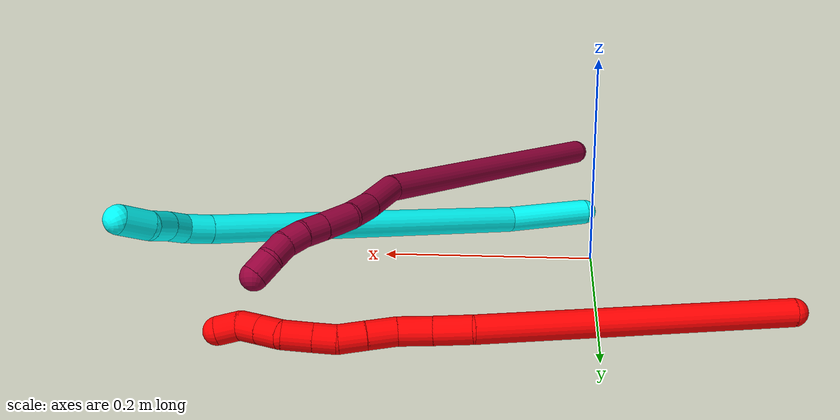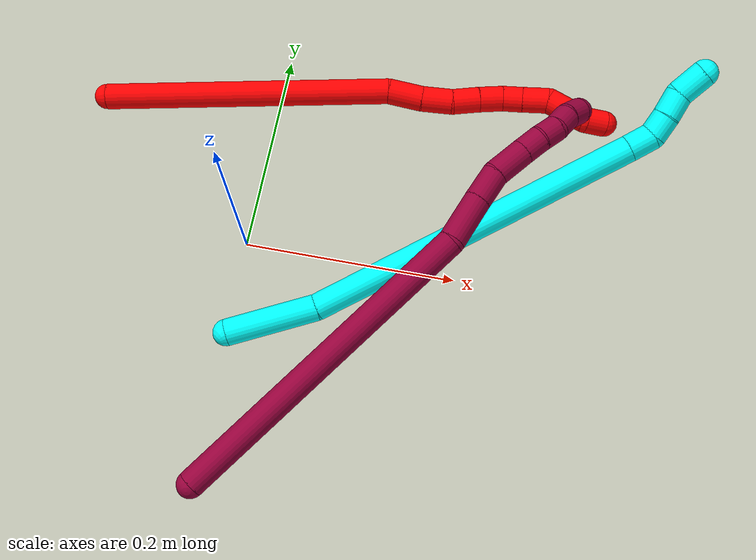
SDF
<sdf version="1.7">
 <world name="default">
  <model name="photoneo_s_sensor">
   <static>1</static>
   <pose>0 0 2 1.57079 1.57079 3.14159</pose>
   <link name="link">
    <inertial><mass>0.1</mass></inertial>
    <sensor name="sensor" type="depth">
     <update_rate>30</update_rate>
     <camera>
      <horizontal_fov>1.22</horizontal_fov>
      <image><width>1920</width><height>1200</height><format>B8G8R8</format></image>
      <clip><near>0.1</near><far>4</far></clip>
      <depth_camera><output>points</output></depth_camera>
     </camera>
     <plugin name="camera_plugin" filename="libgazebo_ros_depth_camera.so">
      <baseline>0.2</baseline>
      <alwaysOn>1</alwaysOn>
      <updateRate>0.0</updateRate>
      <cameraName>camera_ir</cameraName>
      <imageTopicName>/camera/color/image_raw</imageTopicName>
      <cameraInfoTopicName>/camera/color/camera_info</cameraInfoTopicName>
      <depthImageTopicName>/camera/depth/image_raw</depthImageTopicName>
      <depthImageCameraInfoTopicName>/camera/depth/camera_info</depthImageCameraInfoTopicName>
      <pointCloudTopicName>/camera/depth/points</pointCloudTopicName>
      <frameName>fr_optical</frameName>
      <pointCloudCutoff>0.1</pointCloudCutoff>
      <pointCloudCutoffMax>2.0</pointCloudCutoffMax>
      <distortionK1>0</distortionK1>
      <distortionK2>0</distortionK2>
      <distortionK3>0</distortionK3>
      <distortionT1>0</distortionT1>
      <distortionT2>0</distortionT2>
      <CxPrime>0</CxPrime>
      <Cx>0</Cx>
      <Cy>0</Cy>
      <focalLength>0</focalLength>
      <hackBaseline>0</hackBaseline>
     </plugin>
    </sensor>
   </link>
  </model>
  <model name="bin">
   <static>1</static>
   <link name="bottom">
    <collision name="collision-bottom">
     <pose>0 0 -0.01 0 -0 0</pose>
     <geometry><box><size>0.8 0.6 0.02</size></box></geometry>
     <surface>
      <friction><ode><mu>100</mu><mu2>100</mu2></ode></friction>
      <contact><collide_bitmask>65535</collide_bitmask></contact>
     </surface>
    </collision>
   </link>
   <link name="west_wall">
    <collision name="collision-west_wall">
     <pose>-0.41 0 0.1 0 -0 0</pose>
     <geometry><box><size>0.02 0.6 0.2</size></box></geometry>
     <surface>
      <friction><ode><mu>100</mu><mu2>100</mu2></ode></friction>
      <contact><collide_bitmask>65535</collide_bitmask></contact>
     </surface>
    </collision>
   </link>
   <link name="east_wall">
    <collision name="collision-east_wall">
     <pose>0.41 0 0.1 0 -0 0</pose>
     <geometry><box><size>0.02 0.6 0.2</size></box></geometry>
     <surface>
      <friction><ode><mu>100</mu><mu2>100</mu2></ode></friction>
      <contact><collide_bitmask>65535</collide_bitmask></contact>
     </surface>
    </collision>
   </link>
   <link name="south_wall">
    <collision name="collision-south_wall">
     <pose>0 -0.31 0.1 0 -0 0</pose>
     <geometry><box><size>0.8 0.02 0.2</size></box></geometry>
     <surface>
      <friction><ode><mu>100</mu><mu2>100</mu2></ode></friction>
      <contact><collide_bitmask>65535</collide_bitmask></contact>
     </surface>
    </collision>
   </link>
   <link name="north_wall">
    <collision name="collision-north_wall">
     <pose>0 0.31 0.1 0 -0 0</pose>
     <geometry><box><size>0.8 0.02 0.2</size></box></geometry>
     <surface>
      <friction><ode><mu>100</mu><mu2>100</mu2></ode></friction>
      <contact><collide_bitmask>65535</collide_bitmask></contact>
     </surface>
    </collision>
   </link>
  </model>
  <model name="2">
   <static>0</static>
   <link name="2">
    <collision name="collision-cylinder-e_1_1_4">
     <pose>0.026094 0.017193 0.136224 -0.125545 0.187805 -0.011839</pose>
     <geometry><cylinder><radius>0.0125</radius><length>0.279525</length></cylinder></geometry>
     <surface>
      <friction><ode><mu>1.16</mu><mu2>1.16</mu2><slip1>0</slip1><slip2>0</slip2></ode></friction>
      <contact><ode><kp>1e+06</kp><kd>1</kd><max_vel>0</max_vel><min_depth>0.001</min_depth></ode></contact>
     </surface>
    </collision>
    <visual name="visual-cylinder-e_1_1_4">
     <pose>0.026094 0.017193 0.136224 -0.125545 0.187805 -0.011839</pose>
     <geometry><cylinder><radius>0.0125</radius><length>0.279525</length></cylinder></geometry>
     <material><ambient>1 0 0 1</ambient></material>
    </visual>
    <collision name="collision-cylinder-e_2_4_5">
     <pose>0.054935 0.040438 0.288042 -0.370264 0.16274 -0.030542</pose>
     <geometry><cylinder><radius>0.0125</radius><length>0.033901</length></cylinder></geometry>
     <surface>
      <friction><ode><mu>1.16</mu><mu2>1.16</mu2><slip1>0</slip1><slip2>0</slip2></ode></friction>
      <contact><ode><kp>1e+06</kp><kd>1</kd><max_vel>0</max_vel><min_depth>0.001</min_depth></ode></contact>
     </surface>
    </collision>
    <visual name="visual-cylinder-e_2_4_5">
     <pose>0.054935 0.040438 0.288042 -0.370264 0.16274 -0.030542</pose>
     <geometry><cylinder><radius>0.0125</radius><length>0.033901</length></cylinder></geometry>
     <material><ambient>1 0 0 1</ambient></material>
    </visual>
    <collision name="collision-cylinder-e_3_5_6">
     <pose>0.060716 0.050164 0.317963 -0.250965 0.202411 -0.025619</pose>
     <geometry><cylinder><radius>0.0125</radius><length>0.030199</length></cylinder></geometry>
     <surface>
      <friction><ode><mu>1.16</mu><mu2>1.16</mu2><slip1>0</slip1><slip2>0</slip2></ode></friction>
      <contact><ode><kp>1e+06</kp><kd>1</kd><max_vel>0</max_vel><min_depth>0.001</min_depth></ode></contact>
     </surface>
    </collision>
    <visual name="visual-cylinder-e_3_5_6">
     <pose>0.060716 0.050164 0.317963 -0.250965 0.202411 -0.025619</pose>
     <geometry><cylinder><radius>0.0125</radius><length>0.030199</length></cylinder></geometry>
     <material><ambient>1 0 0 1</ambient></material>
    </visual>
    <collision name="collision-cylinder-e_4_6_7">
     <pose>0.065361 0.054459 0.345403 -0.047364 0.121946 -0.002892</pose>
     <geometry><cylinder><radius>0.0125</radius><length>0.02645</length></cylinder></geometry>
     <surface>
      <friction><ode><mu>1.16</mu><mu2>1.16</mu2><slip1>0</slip1><slip2>0</slip2></ode></friction>
      <contact><ode><kp>1e+06</kp><kd>1</kd><max_vel>0</max_vel><min_depth>0.001</min_depth></ode></contact>
     </surface>
    </collision>
    <visual name="visual-cylinder-e_4_6_7">
     <pose>0.065361 0.054459 0.345403 -0.047364 0.121946 -0.002892</pose>
     <geometry><cylinder><radius>0.0125</radius><length>0.02645</length></cylinder></geometry>
     <material><ambient>1 0 0 1</ambient></material>
    </visual>
    <collision name="collision-cylinder-e_5_7_8">
     <pose>0.068283 0.056114 0.370339 -0.087189 0.110259 -0.004815</pose>
     <geometry><cylinder><radius>0.0125</radius><length>0.023884</length></cylinder></geometry>
     <surface>
      <friction><ode><mu>1.16</mu><mu2>1.16</mu2><slip1>0</slip1><slip2>0</slip2></ode></friction>
      <contact><ode><kp>1e+06</kp><kd>1</kd><max_vel>0</max_vel><min_depth>0.001</min_depth></ode></contact>
     </surface>
    </collision>
    <visual name="visual-cylinder-e_5_7_8">
     <pose>0.068283 0.056114 0.370339 -0.087189 0.110259 -0.004815</pose>
     <geometry><cylinder><radius>0.0125</radius><length>0.023884</length></cylinder></geometry>
     <material><ambient>1 0 0 1</ambient></material>
    </visual>
    <collision name="collision-cylinder-e_6_8_9">
     <pose>0.072613 0.059299 0.391457 -0.227486 0.306194 -0.035251</pose>
     <geometry><cylinder><radius>0.0125</radius><length>0.02001</length></cylinder></geometry>
     <surface>
      <friction><ode><mu>1.16</mu><mu2>1.16</mu2><slip1>0</slip1><slip2>0</slip2></ode></friction>
      <contact><ode><kp>1e+06</kp><kd>1</kd><max_vel>0</max_vel><min_depth>0.001</min_depth></ode></contact>
     </surface>
    </collision>
    <visual name="visual-cylinder-e_6_8_9">
     <pose>0.072613 0.059299 0.391457 -0.227486 0.306194 -0.035251</pose>
     <geometry><cylinder><radius>0.0125</radius><length>0.02001</length></cylinder></geometry>
     <material><ambient>1 0 0 1</ambient></material>
    </visual>
    <collision name="collision-cylinder-e_7_9_10">
     <pose>0.07966 0.064054 0.412727 -0.214036 0.317714 -0.034418</pose>
     <geometry><cylinder><radius>0.0125</radius><length>0.025804</length></cylinder></geometry>
     <surface>
      <friction><ode><mu>1.16</mu><mu2>1.16</mu2><slip1>0</slip1><slip2>0</slip2></ode></friction>
      <contact><ode><kp>1e+06</kp><kd>1</kd><max_vel>0</max_vel><min_depth>0.001</min_depth></ode></contact>
     </surface>
    </collision>
    <visual name="visual-cylinder-e_7_9_10">
     <pose>0.07966 0.064054 0.412727 -0.214036 0.317714 -0.034418</pose>
     <geometry><cylinder><radius>0.0125</radius><length>0.025804</length></cylinder></geometry>
     <material><ambient>1 0 0 1</ambient></material>
    </visual>
    <collision name="collision-cylinder-e_8_10_11">
     <pose>0.086795 0.072843 0.43199 -0.703953 0.314102 -0.116187</pose>
     <geometry><cylinder><radius>0.0125</radius><length>0.020099</length></cylinder></geometry>
     <surface>
      <friction><ode><mu>1.16</mu><mu2>1.16</mu2><slip1>0</slip1><slip2>0</slip2></ode></friction>
      <contact><ode><kp>1e+06</kp><kd>1</kd><max_vel>0</max_vel><min_depth>0.001</min_depth></ode></contact>
     </surface>
    </collision>
    <visual name="visual-cylinder-e_8_10_11">
     <pose>0.086795 0.072843 0.43199 -0.703953 0.314102 -0.116187</pose>
     <geometry><cylinder><radius>0.0125</radius><length>0.020099</length></cylinder></geometry>
     <material><ambient>1 0 0 1</ambient></material>
    </visual>
    <collision name="collision-cylinder-e_9_11_12">
     <pose>0.092972 0.085083 0.446663 -0.686479 0.311233 -0.11202</pose>
     <geometry><cylinder><radius>0.0125</radius><length>0.020066</length></cylinder></geometry>
     <surface>
      <friction><ode><mu>1.16</mu><mu2>1.16</mu2><slip1>0</slip1><slip2>0</slip2></ode></friction>
      <contact><ode><kp>1e+06</kp><kd>1</kd><max_vel>0</max_vel><min_depth>0.001</min_depth></ode></contact>
     </surface>
    </collision>
    <visual name="visual-cylinder-e_9_11_12">
     <pose>0.092972 0.085083 0.446663 -0.686479 0.311233 -0.11202</pose>
     <geometry><cylinder><radius>0.0125</radius><length>0.020066</length></cylinder></geometry>
     <material><ambient>1 0 0 1</ambient></material>
    </visual>
    <collision name="collision-cylinder-e_10_12_2">
     <pose>0.095841 0.094093 0.463634 -0.2992 -0.020333 0.003065</pose>
     <geometry><cylinder><radius>0.0125</radius><length>0.020062</length></cylinder></geometry>
     <surface>
      <friction><ode><mu>1.16</mu><mu2>1.16</mu2><slip1>0</slip1><slip2>0</slip2></ode></friction>
      <contact><ode><kp>1e+06</kp><kd>1</kd><max_vel>0</max_vel><min_depth>0.001</min_depth></ode></contact>
     </surface>
    </collision>
    <visual name="visual-cylinder-e_10_12_2">
     <pose>0.095841 0.094093 0.463634 -0.2992 -0.020333 0.003065</pose>
     <geometry><cylinder><radius>0.0125</radius><length>0.020062</length></cylinder></geometry>
     <material><ambient>1 0 0 1</ambient></material>
    </visual>
    <collision name="collision-sphere-2">
     <pose>0.095637 0.097049 0.473218 0 -0 0</pose>
     <geometry><sphere><radius>0.0125</radius></sphere></geometry>
     <surface>
      <friction><ode><mu>1.16</mu><mu2>1.16</mu2><slip1>0</slip1><slip2>0</slip2></ode></friction>
      <contact><ode><kp>1e+06</kp><kd>1</kd><max_vel>0</max_vel><min_depth>0.001</min_depth></ode></contact>
     </surface>
    </collision>
    <visual name="visual-sphere-2">
     <pose>0.095637 0.097049 0.473218 0 -0 0</pose>
     <geometry><sphere><radius>0.0125</radius></sphere></geometry>
     <material><ambient>1 0 0 1</ambient></material>
    </visual>
    <collision name="collision-sphere-12">
     <pose>0.096045 0.091136 0.454051 0 -0 0</pose>
     <geometry><sphere><radius>0.0125</radius></sphere></geometry>
     <surface>
      <friction><ode><mu>1.16</mu><mu2>1.16</mu2><slip1>0</slip1><slip2>0</slip2></ode></friction>
      <contact><ode><kp>1e+06</kp><kd>1</kd><max_vel>0</max_vel><min_depth>0.001</min_depth></ode></contact>
     </surface>
    </collision>
    <visual name="visual-sphere-12">
     <pose>0.096045 0.091136 0.454051 0 -0 0</pose>
     <geometry><sphere><radius>0.0125</radius></sphere></geometry>
     <material><ambient>1 0 0 1</ambient></material>
    </visual>
    <collision name="collision-sphere-11">
     <pose>0.0899 0.079029 0.439275 0 -0 0</pose>
     <geometry><sphere><radius>0.0125</radius></sphere></geometry>
     <surface>
      <friction><ode><mu>1.16</mu><mu2>1.16</mu2><slip1>0</slip1><slip2>0</slip2></ode></friction>
      <contact><ode><kp>1e+06</kp><kd>1</kd><max_vel>0</max_vel><min_depth>0.001</min_depth></ode></contact>
     </surface>
    </collision>
    <visual name="visual-sphere-11">
     <pose>0.0899 0.079029 0.439275 0 -0 0</pose>
     <geometry><sphere><radius>0.0125</radius></sphere></geometry>
     <material><ambient>1 0 0 1</ambient></material>
    </visual>
    <collision name="collision-sphere-10">
     <pose>0.08369 0.066657 0.424704 0 -0 0</pose>
     <geometry><sphere><radius>0.0125</radius></sphere></geometry>
     <surface>
      <friction><ode><mu>1.16</mu><mu2>1.16</mu2><slip1>0</slip1><slip2>0</slip2></ode></friction>
      <contact><ode><kp>1e+06</kp><kd>1</kd><max_vel>0</max_vel><min_depth>0.001</min_depth></ode></contact>
     </surface>
    </collision>
    <visual name="visual-sphere-10">
     <pose>0.08369 0.066657 0.424704 0 -0 0</pose>
     <geometry><sphere><radius>0.0125</radius></sphere></geometry>
     <material><ambient>1 0 0 1</ambient></material>
    </visual>
    <collision name="collision-sphere-9">
     <pose>0.075629 0.06145 0.400751 0 -0 0</pose>
     <geometry><sphere><radius>0.0125</radius></sphere></geometry>
     <surface>
      <friction><ode><mu>1.16</mu><mu2>1.16</mu2><slip1>0</slip1><slip2>0</slip2></ode></friction>
      <contact><ode><kp>1e+06</kp><kd>1</kd><max_vel>0</max_vel><min_depth>0.001</min_depth></ode></contact>
     </surface>
    </collision>
    <visual name="visual-sphere-9">
     <pose>0.075629 0.06145 0.400751 0 -0 0</pose>
     <geometry><sphere><radius>0.0125</radius></sphere></geometry>
     <material><ambient>1 0 0 1</ambient></material>
    </visual>
    <collision name="collision-sphere-4">
     <pose>0.052188 0.034385 0.272449 0 -0 0</pose>
     <geometry><sphere><radius>0.0125</radius></sphere></geometry>
     <surface>
      <friction><ode><mu>1.16</mu><mu2>1.16</mu2><slip1>0</slip1><slip2>0</slip2></ode></friction>
      <contact><ode><kp>1e+06</kp><kd>1</kd><max_vel>0</max_vel><min_depth>0.001</min_depth></ode></contact>
     </surface>
    </collision>
    <visual name="visual-sphere-4">
     <pose>0.052188 0.034385 0.272449 0 -0 0</pose>
     <geometry><sphere><radius>0.0125</radius></sphere></geometry>
     <material><ambient>1 0 0 1</ambient></material>
    </visual>
    <collision name="collision-sphere-1">
     <geometry><sphere><radius>0.0125</radius></sphere></geometry>
     <surface>
      <friction><ode><mu>1.16</mu><mu2>1.16</mu2><slip1>0</slip1><slip2>0</slip2></ode></friction>
      <contact><ode><kp>1e+06</kp><kd>1</kd><max_vel>0</max_vel><min_depth>0.001</min_depth></ode></contact>
     </surface>
    </collision>
    <visual name="visual-sphere-1">
     <geometry><sphere><radius>0.0125</radius></sphere></geometry>
     <material><ambient>1 0 0 1</ambient></material>
    </visual>
    <collision name="collision-sphere-8">
     <pose>0.069597 0.057147 0.382163 0 -0 0</pose>
     <geometry><sphere><radius>0.0125</radius></sphere></geometry>
     <surface>
      <friction><ode><mu>1.16</mu><mu2>1.16</mu2><slip1>0</slip1><slip2>0</slip2></ode></friction>
      <contact><ode><kp>1e+06</kp><kd>1</kd><max_vel>0</max_vel><min_depth>0.001</min_depth></ode></contact>
     </surface>
    </collision>
    <visual name="visual-sphere-8">
     <pose>0.069597 0.057147 0.382163 0 -0 0</pose>
     <geometry><sphere><radius>0.0125</radius></sphere></geometry>
     <material><ambient>1 0 0 1</ambient></material>
    </visual>
    <collision name="collision-sphere-5">
     <pose>0.057681 0.046491 0.303635 0 -0 0</pose>
     <geometry><sphere><radius>0.0125</radius></sphere></geometry>
     <surface>
      <friction><ode><mu>1.16</mu><mu2>1.16</mu2><slip1>0</slip1><slip2>0</slip2></ode></friction>
      <contact><ode><kp>1e+06</kp><kd>1</kd><max_vel>0</max_vel><min_depth>0.001</min_depth></ode></contact>
     </surface>
    </collision>
    <visual name="visual-sphere-5">
     <pose>0.057681 0.046491 0.303635 0 -0 0</pose>
     <geometry><sphere><radius>0.0125</radius></sphere></geometry>
     <material><ambient>1 0 0 1</ambient></material>
    </visual>
    <collision name="collision-sphere-6">
     <pose>0.063752 0.053837 0.332291 0 -0 0</pose>
     <geometry><sphere><radius>0.0125</radius></sphere></geometry>
     <surface>
      <friction><ode><mu>1.16</mu><mu2>1.16</mu2><slip1>0</slip1><slip2>0</slip2></ode></friction>
      <contact><ode><kp>1e+06</kp><kd>1</kd><max_vel>0</max_vel><min_depth>0.001</min_depth></ode></contact>
     </surface>
    </collision>
    <visual name="visual-sphere-6">
     <pose>0.063752 0.053837 0.332291 0 -0 0</pose>
     <geometry><sphere><radius>0.0125</radius></sphere></geometry>
     <material><ambient>1 0 0 1</ambient></material>
    </visual>
    <collision name="collision-sphere-7">
     <pose>0.066969 0.05508 0.358514 0 -0 0</pose>
     <geometry><sphere><radius>0.0125</radius></sphere></geometry>
     <surface>
      <friction><ode><mu>1.16</mu><mu2>1.16</mu2><slip1>0</slip1><slip2>0</slip2></ode></friction>
      <contact><ode><kp>1e+06</kp><kd>1</kd><max_vel>0</max_vel><min_depth>0.001</min_depth></ode></contact>
     </surface>
    </collision>
    <visual name="visual-sphere-7">
     <pose>0.066969 0.05508 0.358514 0 -0 0</pose>
     <geometry><sphere><radius>0.0125</radius></sphere></geometry>
     <material><ambient>1 0 0 1</ambient></material>
    </visual>
    <inertial>
     <pose>0.046782 0.036741 0.241712 0 -0 0</pose>
     <mass>0.5</mass>
     <inertia>
      <ixx>0.001805</ixx>
      <ixy>0</ixy>
      <ixz>0</ixz>
      <iyy>0.001822</iyy>
      <iyz>0</iyz>
      <izz>-0.00054</izz>
     </inertia>
    </inertial>
   </link>
   <pose>-0.169666 0.124329 0.011497 -1.90869 -1.20404 -0.877311</pose>
  </model>
  <model name="3">
   <static>0</static>
   <link name="3">
    <collision name="collision-cylinder-e_1_1_4">
     <pose>0.021107 -0.000477 0.037398 0.012752 0.513782 0.00335</pose>
     <geometry><cylinder><radius>0.0125</radius><length>0.085892</length></cylinder></geometry>
     <surface>
      <friction><ode><mu>1.16</mu><mu2>1.16</mu2><slip1>0</slip1><slip2>0</slip2></ode></friction>
      <contact><ode><kp>1e+06</kp><kd>1</kd><max_vel>0</max_vel><min_depth>0.001</min_depth></ode></contact>
     </surface>
    </collision>
    <visual name="visual-cylinder-e_1_1_4">
     <pose>0.021107 -0.000477 0.037398 0.012752 0.513782 0.00335</pose>
     <geometry><cylinder><radius>0.0125</radius><length>0.085892</length></cylinder></geometry>
     <material><ambient>0.003922 1 0.996078 1</ambient></material>
    </visual>
    <collision name="collision-cylinder-e_2_4_5">
     <pose>0.100635 -0.029071 0.220138 0.191095 0.375879 0.03645</pose>
     <geometry><cylinder><radius>0.0125</radius><length>0.318293</length></cylinder></geometry>
     <surface>
      <friction><ode><mu>1.16</mu><mu2>1.16</mu2><slip1>0</slip1><slip2>0</slip2></ode></friction>
      <contact><ode><kp>1e+06</kp><kd>1</kd><max_vel>0</max_vel><min_depth>0.001</min_depth></ode></contact>
     </surface>
    </collision>
    <visual name="visual-cylinder-e_2_4_5">
     <pose>0.100635 -0.029071 0.220138 0.191095 0.375879 0.03645</pose>
     <geometry><cylinder><radius>0.0125</radius><length>0.318293</length></cylinder></geometry>
     <material><ambient>0.003922 1 0.996078 1</ambient></material>
    </visual>
    <collision name="collision-cylinder-e_3_5_6">
     <pose>0.163529 -0.060107 0.376245 0.264805 0.381324 0.051399</pose>
     <geometry><cylinder><radius>0.0125</radius><length>0.024037</length></cylinder></geometry>
     <surface>
      <friction><ode><mu>1.16</mu><mu2>1.16</mu2><slip1>0</slip1><slip2>0</slip2></ode></friction>
      <contact><ode><kp>1e+06</kp><kd>1</kd><max_vel>0</max_vel><min_depth>0.001</min_depth></ode></contact>
     </surface>
    </collision>
    <visual name="visual-cylinder-e_3_5_6">
     <pose>0.163529 -0.060107 0.376245 0.264805 0.381324 0.051399</pose>
     <geometry><cylinder><radius>0.0125</radius><length>0.024037</length></cylinder></geometry>
     <material><ambient>0.003922 1 0.996078 1</ambient></material>
    </visual>
    <collision name="collision-cylinder-e_4_6_7">
     <pose>0.167826 -0.068424 0.395913 0.54509 -0.016874 -0.004716</pose>
     <geometry><cylinder><radius>0.0125</radius><length>0.020822</length></cylinder></geometry>
     <surface>
      <friction><ode><mu>1.16</mu><mu2>1.16</mu2><slip1>0</slip1><slip2>0</slip2></ode></friction>
      <contact><ode><kp>1e+06</kp><kd>1</kd><max_vel>0</max_vel><min_depth>0.001</min_depth></ode></contact>
     </surface>
    </collision>
    <visual name="visual-cylinder-e_4_6_7">
     <pose>0.167826 -0.068424 0.395913 0.54509 -0.016874 -0.004716</pose>
     <geometry><cylinder><radius>0.0125</radius><length>0.020822</length></cylinder></geometry>
     <material><ambient>0.003922 1 0.996078 1</ambient></material>
    </visual>
    <collision name="collision-cylinder-e_5_7_8">
     <pose>0.166288 -0.079303 0.414682 0.50701 -0.120084 -0.031146</pose>
     <geometry><cylinder><radius>0.0125</radius><length>0.02274</length></cylinder></geometry>
     <surface>
      <friction><ode><mu>1.16</mu><mu2>1.16</mu2><slip1>0</slip1><slip2>0</slip2></ode></friction>
      <contact><ode><kp>1e+06</kp><kd>1</kd><max_vel>0</max_vel><min_depth>0.001</min_depth></ode></contact>
     </surface>
    </collision>
    <visual name="visual-cylinder-e_5_7_8">
     <pose>0.166288 -0.079303 0.414682 0.50701 -0.120084 -0.031146</pose>
     <geometry><cylinder><radius>0.0125</radius><length>0.02274</length></cylinder></geometry>
     <material><ambient>0.003922 1 0.996078 1</ambient></material>
    </visual>
    <collision name="collision-cylinder-e_6_8_2">
     <pose>0.168579 -0.091232 0.436555 0.492927 0.261894 0.066242</pose>
     <geometry><cylinder><radius>0.0125</radius><length>0.028215</length></cylinder></geometry>
     <surface>
      <friction><ode><mu>1.16</mu><mu2>1.16</mu2><slip1>0</slip1><slip2>0</slip2></ode></friction>
      <contact><ode><kp>1e+06</kp><kd>1</kd><max_vel>0</max_vel><min_depth>0.001</min_depth></ode></contact>
     </surface>
    </collision>
    <visual name="visual-cylinder-e_6_8_2">
     <pose>0.168579 -0.091232 0.436555 0.492927 0.261894 0.066242</pose>
     <geometry><cylinder><radius>0.0125</radius><length>0.028215</length></cylinder></geometry>
     <material><ambient>0.003922 1 0.996078 1</ambient></material>
    </visual>
    <collision name="collision-sphere-2">
     <pose>0.172231 -0.09768 0.448559 0 -0 0</pose>
     <geometry><sphere><radius>0.0125</radius></sphere></geometry>
     <surface>
      <friction><ode><mu>1.16</mu><mu2>1.16</mu2><slip1>0</slip1><slip2>0</slip2></ode></friction>
      <contact><ode><kp>1e+06</kp><kd>1</kd><max_vel>0</max_vel><min_depth>0.001</min_depth></ode></contact>
     </surface>
    </collision>
    <visual name="visual-sphere-2">
     <pose>0.172231 -0.09768 0.448559 0 -0 0</pose>
     <geometry><sphere><radius>0.0125</radius></sphere></geometry>
     <material><ambient>0.003922 1 0.996078 1</ambient></material>
    </visual>
    <collision name="collision-sphere-4">
     <pose>0.042214 -0.000954 0.074797 0 -0 0</pose>
     <geometry><sphere><radius>0.0125</radius></sphere></geometry>
     <surface>
      <friction><ode><mu>1.16</mu><mu2>1.16</mu2><slip1>0</slip1><slip2>0</slip2></ode></friction>
      <contact><ode><kp>1e+06</kp><kd>1</kd><max_vel>0</max_vel><min_depth>0.001</min_depth></ode></contact>
     </surface>
    </collision>
    <visual name="visual-sphere-4">
     <pose>0.042214 -0.000954 0.074797 0 -0 0</pose>
     <geometry><sphere><radius>0.0125</radius></sphere></geometry>
     <material><ambient>0.003922 1 0.996078 1</ambient></material>
    </visual>
    <collision name="collision-sphere-1">
     <geometry><sphere><radius>0.0125</radius></sphere></geometry>
     <surface>
      <friction><ode><mu>1.16</mu><mu2>1.16</mu2><slip1>0</slip1><slip2>0</slip2></ode></friction>
      <contact><ode><kp>1e+06</kp><kd>1</kd><max_vel>0</max_vel><min_depth>0.001</min_depth></ode></contact>
     </surface>
    </collision>
    <visual name="visual-sphere-1">
     <geometry><sphere><radius>0.0125</radius></sphere></geometry>
     <material><ambient>0.003922 1 0.996078 1</ambient></material>
    </visual>
    <collision name="collision-sphere-8">
     <pose>0.164926 -0.084784 0.42455 0 -0 0</pose>
     <geometry><sphere><radius>0.0125</radius></sphere></geometry>
     <surface>
      <friction><ode><mu>1.16</mu><mu2>1.16</mu2><slip1>0</slip1><slip2>0</slip2></ode></friction>
      <contact><ode><kp>1e+06</kp><kd>1</kd><max_vel>0</max_vel><min_depth>0.001</min_depth></ode></contact>
     </surface>
    </collision>
    <visual name="visual-sphere-8">
     <pose>0.164926 -0.084784 0.42455 0 -0 0</pose>
     <geometry><sphere><radius>0.0125</radius></sphere></geometry>
     <material><ambient>0.003922 1 0.996078 1</ambient></material>
    </visual>
    <collision name="collision-sphere-5">
     <pose>0.159056 -0.057188 0.365479 0 -0 0</pose>
     <geometry><sphere><radius>0.0125</radius></sphere></geometry>
     <surface>
      <friction><ode><mu>1.16</mu><mu2>1.16</mu2><slip1>0</slip1><slip2>0</slip2></ode></friction>
      <contact><ode><kp>1e+06</kp><kd>1</kd><max_vel>0</max_vel><min_depth>0.001</min_depth></ode></contact>
     </surface>
    </collision>
    <visual name="visual-sphere-5">
     <pose>0.159056 -0.057188 0.365479 0 -0 0</pose>
     <geometry><sphere><radius>0.0125</radius></sphere></geometry>
     <material><ambient>0.003922 1 0.996078 1</ambient></material>
    </visual>
    <collision name="collision-sphere-6">
     <pose>0.168001 -0.063027 0.387012 0 -0 0</pose>
     <geometry><sphere><radius>0.0125</radius></sphere></geometry>
     <surface>
      <friction><ode><mu>1.16</mu><mu2>1.16</mu2><slip1>0</slip1><slip2>0</slip2></ode></friction>
      <contact><ode><kp>1e+06</kp><kd>1</kd><max_vel>0</max_vel><min_depth>0.001</min_depth></ode></contact>
     </surface>
    </collision>
    <visual name="visual-sphere-6">
     <pose>0.168001 -0.063027 0.387012 0 -0 0</pose>
     <geometry><sphere><radius>0.0125</radius></sphere></geometry>
     <material><ambient>0.003922 1 0.996078 1</ambient></material>
    </visual>
    <collision name="collision-sphere-7">
     <pose>0.16765 -0.073822 0.404814 0 -0 0</pose>
     <geometry><sphere><radius>0.0125</radius></sphere></geometry>
     <surface>
      <friction><ode><mu>1.16</mu><mu2>1.16</mu2><slip1>0</slip1><slip2>0</slip2></ode></friction>
      <contact><ode><kp>1e+06</kp><kd>1</kd><max_vel>0</max_vel><min_depth>0.001</min_depth></ode></contact>
     </surface>
    </collision>
    <visual name="visual-sphere-7">
     <pose>0.16765 -0.073822 0.404814 0 -0 0</pose>
     <geometry><sphere><radius>0.0125</radius></sphere></geometry>
     <material><ambient>0.003922 1 0.996078 1</ambient></material>
    </visual>
    <inertial>
     <pose>0.099615 -0.033082 0.224631 0 -0 0</pose>
     <mass>0.5</mass>
     <inertia>
      <ixx>0.002672</ixx>
      <ixy>0</ixy>
      <ixz>0</ixz>
      <iyy>0.002804</iyy>
      <iyz>0</iyz>
      <izz>-0.000504</izz>
     </inertia>
    </inertial>
   </link>
   <pose>0.003557 -0.091492 0.011497 -1.64091 -0.231701 -0.609018</pose>
  </model>
  <model name="8">
   <static>0</static>
   <link name="8">
    <collision name="collision-cylinder-e_1_1_4">
     <pose>0.068834 0.123053 -0.062052 -2.03785 0.463225 -0.731644</pose>
     <geometry><cylinder><radius>0.0125</radius><length>0.308095</length></cylinder></geometry>
     <surface>
      <friction><ode><mu>1.16</mu><mu2>1.16</mu2><slip1>0</slip1><slip2>0</slip2></ode></friction>
      <contact><ode><kp>1e+06</kp><kd>1</kd><max_vel>0</max_vel><min_depth>0.001</min_depth></ode></contact>
     </surface>
    </collision>
    <visual name="visual-cylinder-e_1_1_4">
     <pose>0.068834 0.123053 -0.062052 -2.03785 0.463225 -0.731644</pose>
     <geometry><cylinder><radius>0.0125</radius><length>0.308095</length></cylinder></geometry>
     <material><ambient>0.584314 0 0.227451 1</ambient></material>
    </visual>
    <collision name="collision-cylinder-e_2_4_5">
     <pose>0.142413 0.263363 -0.138586 -2.269 0.207602 -0.439632</pose>
     <geometry><cylinder><radius>0.0125</radius><length>0.046044</length></cylinder></geometry>
     <surface>
      <friction><ode><mu>1.16</mu><mu2>1.16</mu2><slip1>0</slip1><slip2>0</slip2></ode></friction>
      <contact><ode><kp>1e+06</kp><kd>1</kd><max_vel>0</max_vel><min_depth>0.001</min_depth></ode></contact>
     </surface>
    </collision>
    <visual name="visual-cylinder-e_2_4_5">
     <pose>0.142413 0.263363 -0.138586 -2.269 0.207602 -0.439632</pose>
     <geometry><cylinder><radius>0.0125</radius><length>0.046044</length></cylinder></geometry>
     <material><ambient>0.584314 0 0.227451 1</ambient></material>
    </visual>
    <collision name="collision-cylinder-e_3_5_6">
     <pose>0.150725 0.292821 -0.1615 -2.17548 0.235977 -0.444537</pose>
     <geometry><cylinder><radius>0.0125</radius><length>0.03051</length></cylinder></geometry>
     <surface>
      <friction><ode><mu>1.16</mu><mu2>1.16</mu2><slip1>0</slip1><slip2>0</slip2></ode></friction>
      <contact><ode><kp>1e+06</kp><kd>1</kd><max_vel>0</max_vel><min_depth>0.001</min_depth></ode></contact>
     </surface>
    </collision>
    <visual name="visual-cylinder-e_3_5_6">
     <pose>0.150725 0.292821 -0.1615 -2.17548 0.235977 -0.444537</pose>
     <geometry><cylinder><radius>0.0125</radius><length>0.03051</length></cylinder></geometry>
     <material><ambient>0.584314 0 0.227451 1</ambient></material>
    </visual>
    <collision name="collision-cylinder-e_4_6_7">
     <pose>0.162665 0.316794 -0.178628 -2.20709 0.519723 -0.970014</pose>
     <geometry><cylinder><radius>0.0125</radius><length>0.03372</length></cylinder></geometry>
     <surface>
      <friction><ode><mu>1.16</mu><mu2>1.16</mu2><slip1>0</slip1><slip2>0</slip2></ode></friction>
      <contact><ode><kp>1e+06</kp><kd>1</kd><max_vel>0</max_vel><min_depth>0.001</min_depth></ode></contact>
     </surface>
    </collision>
    <visual name="visual-cylinder-e_4_6_7">
     <pose>0.162665 0.316794 -0.178628 -2.20709 0.519723 -0.970014</pose>
     <geometry><cylinder><radius>0.0125</radius><length>0.03372</length></cylinder></geometry>
     <material><ambient>0.584314 0 0.227451 1</ambient></material>
    </visual>
    <collision name="collision-cylinder-e_5_7_8">
     <pose>0.176552 0.336092 -0.192534 -2.1762 0.542076 -0.975115</pose>
     <geometry><cylinder><radius>0.0125</radius><length>0.021375</length></cylinder></geometry>
     <surface>
      <friction><ode><mu>1.16</mu><mu2>1.16</mu2><slip1>0</slip1><slip2>0</slip2></ode></friction>
      <contact><ode><kp>1e+06</kp><kd>1</kd><max_vel>0</max_vel><min_depth>0.001</min_depth></ode></contact>
     </surface>
    </collision>
    <visual name="visual-cylinder-e_5_7_8">
     <pose>0.176552 0.336092 -0.192534 -2.1762 0.542076 -0.975115</pose>
     <geometry><cylinder><radius>0.0125</radius><length>0.021375</length></cylinder></geometry>
     <material><ambient>0.584314 0 0.227451 1</ambient></material>
    </visual>
    <collision name="collision-cylinder-e_6_8_9">
     <pose>0.187566 0.349384 -0.203949 -2.39302 0.575963 -1.29224</pose>
     <geometry><cylinder><radius>0.0125</radius><length>0.020197</length></cylinder></geometry>
     <surface>
      <friction><ode><mu>1.16</mu><mu2>1.16</mu2><slip1>0</slip1><slip2>0</slip2></ode></friction>
      <contact><ode><kp>1e+06</kp><kd>1</kd><max_vel>0</max_vel><min_depth>0.001</min_depth></ode></contact>
     </surface>
    </collision>
    <visual name="visual-cylinder-e_6_8_9">
     <pose>0.187566 0.349384 -0.203949 -2.39302 0.575963 -1.29224</pose>
     <geometry><cylinder><radius>0.0125</radius><length>0.020197</length></cylinder></geometry>
     <material><ambient>0.584314 0 0.227451 1</ambient></material>
    </visual>
    <collision name="collision-cylinder-e_7_9_10">
     <pose>0.196411 0.36034 -0.218022 -2.55833 0.341031 -1.04155</pose>
     <geometry><cylinder><radius>0.0125</radius><length>0.020004</length></cylinder></geometry>
     <surface>
      <friction><ode><mu>1.16</mu><mu2>1.16</mu2><slip1>0</slip1><slip2>0</slip2></ode></friction>
      <contact><ode><kp>1e+06</kp><kd>1</kd><max_vel>0</max_vel><min_depth>0.001</min_depth></ode></contact>
     </surface>
    </collision>
    <visual name="visual-cylinder-e_7_9_10">
     <pose>0.196411 0.36034 -0.218022 -2.55833 0.341031 -1.04155</pose>
     <geometry><cylinder><radius>0.0125</radius><length>0.020004</length></cylinder></geometry>
     <material><ambient>0.584314 0 0.227451 1</ambient></material>
    </visual>
    <collision name="collision-cylinder-e_8_10_2">
     <pose>0.204768 0.368421 -0.234079 -2.80241 0.523405 -2.00395</pose>
     <geometry><cylinder><radius>0.0125</radius><length>0.020054</length></cylinder></geometry>
     <surface>
      <friction><ode><mu>1.16</mu><mu2>1.16</mu2><slip1>0</slip1><slip2>0</slip2></ode></friction>
      <contact><ode><kp>1e+06</kp><kd>1</kd><max_vel>0</max_vel><min_depth>0.001</min_depth></ode></contact>
     </surface>
    </collision>
    <visual name="visual-cylinder-e_8_10_2">
     <pose>0.204768 0.368421 -0.234079 -2.80241 0.523405 -2.00395</pose>
     <geometry><cylinder><radius>0.0125</radius><length>0.020054</length></cylinder></geometry>
     <material><ambient>0.584314 0 0.227451 1</ambient></material>
    </visual>
    <collision name="collision-sphere-2">
     <pose>0.20978 0.37131 -0.242269 0 -0 0</pose>
     <geometry><sphere><radius>0.0125</radius></sphere></geometry>
     <surface>
      <friction><ode><mu>1.16</mu><mu2>1.16</mu2><slip1>0</slip1><slip2>0</slip2></ode></friction>
      <contact><ode><kp>1e+06</kp><kd>1</kd><max_vel>0</max_vel><min_depth>0.001</min_depth></ode></contact>
     </surface>
    </collision>
    <visual name="visual-sphere-2">
     <pose>0.20978 0.37131 -0.242269 0 -0 0</pose>
     <geometry><sphere><radius>0.0125</radius></sphere></geometry>
     <material><ambient>0.584314 0 0.227451 1</ambient></material>
    </visual>
    <collision name="collision-sphere-10">
     <pose>0.199756 0.365531 -0.225889 0 -0 0</pose>
     <geometry><sphere><radius>0.0125</radius></sphere></geometry>
     <surface>
      <friction><ode><mu>1.16</mu><mu2>1.16</mu2><slip1>0</slip1><slip2>0</slip2></ode></friction>
      <contact><ode><kp>1e+06</kp><kd>1</kd><max_vel>0</max_vel><min_depth>0.001</min_depth></ode></contact>
     </surface>
    </collision>
    <visual name="visual-sphere-10">
     <pose>0.199756 0.365531 -0.225889 0 -0 0</pose>
     <geometry><sphere><radius>0.0125</radius></sphere></geometry>
     <material><ambient>0.584314 0 0.227451 1</ambient></material>
    </visual>
    <collision name="collision-sphere-9">
     <pose>0.193066 0.355148 -0.210154 0 -0 0</pose>
     <geometry><sphere><radius>0.0125</radius></sphere></geometry>
     <surface>
      <friction><ode><mu>1.16</mu><mu2>1.16</mu2><slip1>0</slip1><slip2>0</slip2></ode></friction>
      <contact><ode><kp>1e+06</kp><kd>1</kd><max_vel>0</max_vel><min_depth>0.001</min_depth></ode></contact>
     </surface>
    </collision>
    <visual name="visual-sphere-9">
     <pose>0.193066 0.355148 -0.210154 0 -0 0</pose>
     <geometry><sphere><radius>0.0125</radius></sphere></geometry>
     <material><ambient>0.584314 0 0.227451 1</ambient></material>
    </visual>
    <collision name="collision-sphere-4">
     <pose>0.137668 0.246106 -0.124104 0 -0 0</pose>
     <geometry><sphere><radius>0.0125</radius></sphere></geometry>
     <surface>
      <friction><ode><mu>1.16</mu><mu2>1.16</mu2><slip1>0</slip1><slip2>0</slip2></ode></friction>
      <contact><ode><kp>1e+06</kp><kd>1</kd><max_vel>0</max_vel><min_depth>0.001</min_depth></ode></contact>
     </surface>
    </collision>
    <visual name="visual-sphere-4">
     <pose>0.137668 0.246106 -0.124104 0 -0 0</pose>
     <geometry><sphere><radius>0.0125</radius></sphere></geometry>
     <material><ambient>0.584314 0 0.227451 1</ambient></material>
    </visual>
    <collision name="collision-sphere-1">
     <geometry><sphere><radius>0.0125</radius></sphere></geometry>
     <surface>
      <friction><ode><mu>1.16</mu><mu2>1.16</mu2><slip1>0</slip1><slip2>0</slip2></ode></friction>
      <contact><ode><kp>1e+06</kp><kd>1</kd><max_vel>0</max_vel><min_depth>0.001</min_depth></ode></contact>
     </surface>
    </collision>
    <visual name="visual-sphere-1">
     <geometry><sphere><radius>0.0125</radius></sphere></geometry>
     <material><ambient>0.584314 0 0.227451 1</ambient></material>
    </visual>
    <collision name="collision-sphere-8">
     <pose>0.182066 0.34362 -0.197744 0 -0 0</pose>
     <geometry><sphere><radius>0.0125</radius></sphere></geometry>
     <surface>
      <friction><ode><mu>1.16</mu><mu2>1.16</mu2><slip1>0</slip1><slip2>0</slip2></ode></friction>
      <contact><ode><kp>1e+06</kp><kd>1</kd><max_vel>0</max_vel><min_depth>0.001</min_depth></ode></contact>
     </surface>
    </collision>
    <visual name="visual-sphere-8">
     <pose>0.182066 0.34362 -0.197744 0 -0 0</pose>
     <geometry><sphere><radius>0.0125</radius></sphere></geometry>
     <material><ambient>0.584314 0 0.227451 1</ambient></material>
    </visual>
    <collision name="collision-sphere-5">
     <pose>0.147158 0.280619 -0.153068 0 -0 0</pose>
     <geometry><sphere><radius>0.0125</radius></sphere></geometry>
     <surface>
      <friction><ode><mu>1.16</mu><mu2>1.16</mu2><slip1>0</slip1><slip2>0</slip2></ode></friction>
      <contact><ode><kp>1e+06</kp><kd>1</kd><max_vel>0</max_vel><min_depth>0.001</min_depth></ode></contact>
     </surface>
    </collision>
    <visual name="visual-sphere-5">
     <pose>0.147158 0.280619 -0.153068 0 -0 0</pose>
     <geometry><sphere><radius>0.0125</radius></sphere></geometry>
     <material><ambient>0.584314 0 0.227451 1</ambient></material>
    </visual>
    <collision name="collision-sphere-6">
     <pose>0.154291 0.305024 -0.169932 0 -0 0</pose>
     <geometry><sphere><radius>0.0125</radius></sphere></geometry>
     <surface>
      <friction><ode><mu>1.16</mu><mu2>1.16</mu2><slip1>0</slip1><slip2>0</slip2></ode></friction>
      <contact><ode><kp>1e+06</kp><kd>1</kd><max_vel>0</max_vel><min_depth>0.001</min_depth></ode></contact>
     </surface>
    </collision>
    <visual name="visual-sphere-6">
     <pose>0.154291 0.305024 -0.169932 0 -0 0</pose>
     <geometry><sphere><radius>0.0125</radius></sphere></geometry>
     <material><ambient>0.584314 0 0.227451 1</ambient></material>
    </visual>
    <collision name="collision-sphere-7">
     <pose>0.171038 0.328564 -0.187324 0 -0 0</pose>
     <geometry><sphere><radius>0.0125</radius></sphere></geometry>
     <surface>
      <friction><ode><mu>1.16</mu><mu2>1.16</mu2><slip1>0</slip1><slip2>0</slip2></ode></friction>
      <contact><ode><kp>1e+06</kp><kd>1</kd><max_vel>0</max_vel><min_depth>0.001</min_depth></ode></contact>
     </surface>
    </collision>
    <visual name="visual-sphere-7">
     <pose>0.171038 0.328564 -0.187324 0 -0 0</pose>
     <geometry><sphere><radius>0.0125</radius></sphere></geometry>
     <material><ambient>0.584314 0 0.227451 1</ambient></material>
    </visual>
    <inertial>
     <pose>0.106892 0.196984 -0.10748 0 -0 0</pose>
     <mass>0.5</mass>
     <inertia>
      <ixx>0.000185</ixx>
      <ixy>0</ixy>
      <ixz>0</ixz>
      <iyy>-0.001622</iyy>
      <iyz>0</iyz>
      <izz>-0.003094</izz>
     </inertia>
    </inertial>
   </link>
   <pose>0.008554 -0.232567 0.027178 0.699146 0.118056 -0.155058</pose>
  </model>
 </world>
</sdf>
